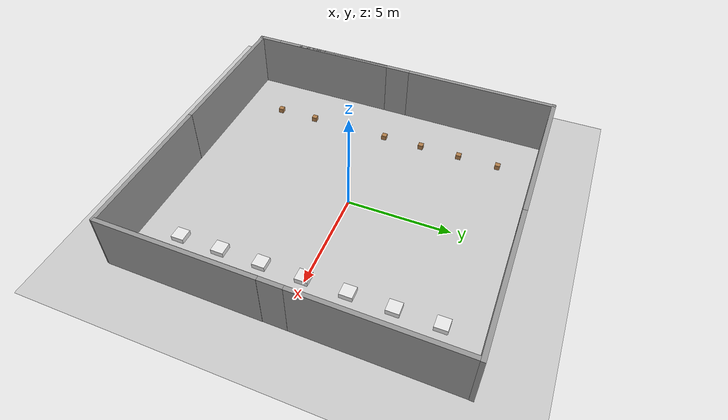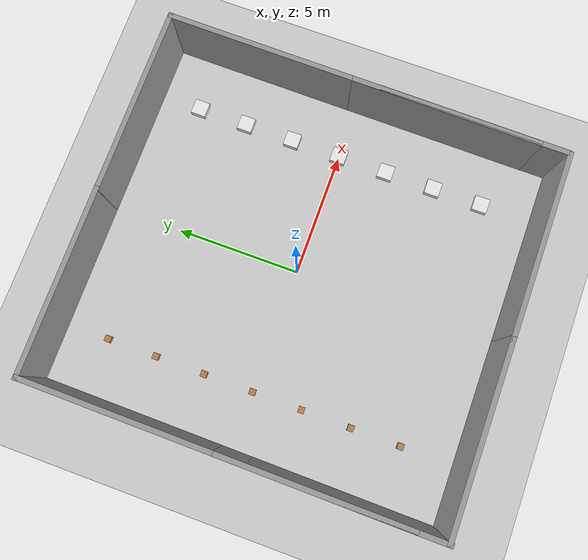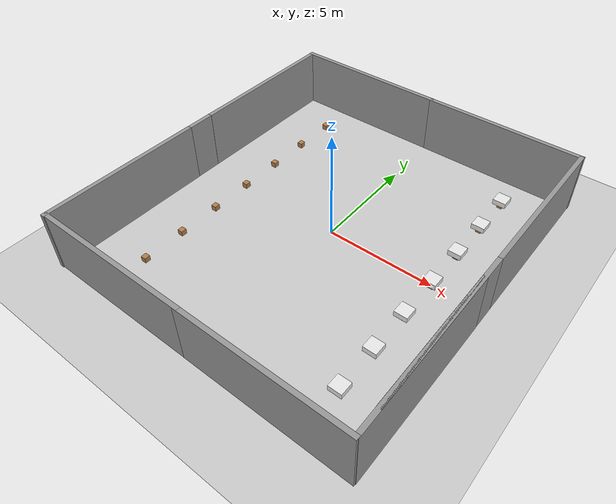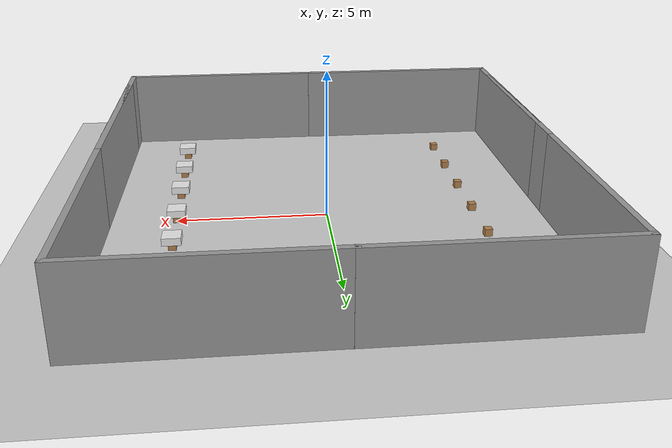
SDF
<sdf version="1.7">
 <world name="default">
  <light name="sun" type="directional">
   <pose>0 0 10 0 -0 0</pose>
   <diffuse>0.8 0.8 0.8 1</diffuse>
   <specular>0.2 0.2 0.2 1</specular>
   <attenuation>
    <range>1000</range>
    <constant>0.9</constant>
    <linear>0.01</linear>
    <quadratic>0.001</quadratic>
   </attenuation>
   <direction>-0.5 0.1 -0.9</direction>
   <spot><inner_angle>0</inner_angle><outer_angle>0</outer_angle><falloff>0</falloff></spot>
  </light>
  <model name="ground_plane">
   <static>1</static>
   <link name="link">
    <collision name="collision">
     <geometry><plane><normal>0 0 1</normal><size>100 100</size></plane></geometry>
     <surface>
      <contact><collide_bitmask>65535</collide_bitmask></contact>
      <friction><ode><mu>100</mu><mu2>50</mu2></ode></friction>
     </surface>
    </collision>
    <visual name="visual">
     <cast_shadows>0</cast_shadows>
     <geometry><plane><normal>0 0 1</normal><size>100 100</size></plane></geometry>
     <material>
      <script><uri>file://media/materials/scripts/gazebo.material</uri><name>Gazebo/Grey</name></script>
     </material>
    </visual>
   </link>
  </model>
  <gravity>0 0 -9.8</gravity>
  <magnetic_field>6e-06 2.3e-05 -4.2e-05</magnetic_field>
  <atmosphere type="adiabatic"/>
  <physics type="ode">
   <max_step_size>0.001</max_step_size>
   <real_time_factor>1</real_time_factor>
   <real_time_update_rate>1000</real_time_update_rate>
  </physics>
  <scene><ambient>0.4 0.4 0.4 1</ambient><background>0.7 0.7 0.7 1</background><shadows>1</shadows></scene>
  <spherical_coordinates>
   <surface_model>EARTH_WGS84</surface_model>
   <latitude_deg>0</latitude_deg>
   <longitude_deg>0</longitude_deg>
   <elevation>0</elevation>
   <heading_deg>0</heading_deg>
  </spherical_coordinates>
  <model name="grey_wall">
   <static>1</static>
   <link name="link">
    <pose>0 0 1.4 0 -0 0</pose>
    <collision name="collision"><geometry><box><size>7.5 0.2 2.8</size></box></geometry></collision>
    <visual name="visual">
     <cast_shadows>0</cast_shadows>
     <geometry><box><size>7.5 0.2 2.8</size></box></geometry>
     <material>
      <script>
       <uri>model://grey_wall/materials/scripts</uri>
       <uri>model://grey_wall/materials/textures</uri>
       <name>vrc/grey_wall</name>
      </script>
     </material>
    </visual>
   </link>
   <pose>-3.75182 -8.20003 0 0 -0 0</pose>
  </model>
  <model name="grey_wall_clone">
   <static>1</static>
   <link name="link">
    <pose>0 0 1.4 0 -0 0</pose>
    <collision name="collision"><geometry><box><size>7.5 0.2 2.8</size></box></geometry></collision>
    <visual name="visual">
     <cast_shadows>0</cast_shadows>
     <geometry><box><size>7.5 0.2 2.8</size></box></geometry>
     <material>
      <script>
       <uri>model://grey_wall/materials/scripts</uri>
       <uri>model://grey_wall/materials/textures</uri>
       <name>vrc/grey_wall</name>
      </script>
     </material>
    </visual>
   </link>
   <pose>-7.40615 -3.3491 0 0 -0 1.56255</pose>
  </model>
  <model name="grey_wall_clone_clone">
   <static>1</static>
   <link name="link">
    <pose>0 0 1.4 0 -0 0</pose>
    <collision name="collision"><geometry><box><size>7.5 0.2 2.8</size></box></geometry></collision>
    <visual name="visual">
     <cast_shadows>0</cast_shadows>
     <geometry><box><size>7.5 0.2 2.8</size></box></geometry>
     <material>
      <script>
       <uri>model://grey_wall/materials/scripts</uri>
       <uri>model://grey_wall/materials/textures</uri>
       <name>vrc/grey_wall</name>
      </script>
     </material>
    </visual>
   </link>
   <pose>-7.34226 4.14259 0 0 -0 1.56255</pose>
  </model>
  <model name="grey_wall_clone_0">
   <static>1</static>
   <link name="link">
    <pose>0 0 1.4 0 -0 0</pose>
    <collision name="collision"><geometry><box><size>7.5 0.2 2.8</size></box></geometry></collision>
    <visual name="visual">
     <cast_shadows>0</cast_shadows>
     <geometry><box><size>7.5 0.2 2.8</size></box></geometry>
     <material>
      <script>
       <uri>model://grey_wall/materials/scripts</uri>
       <uri>model://grey_wall/materials/textures</uri>
       <name>vrc/grey_wall</name>
      </script>
     </material>
    </visual>
   </link>
   <pose>-3.67169 7.8055 0 0 -0 0</pose>
  </model>
  <model name="grey_wall_clone_1">
   <static>1</static>
   <link name="link">
    <pose>0 0 1.4 0 -0 0</pose>
    <collision name="collision"><geometry><box><size>7.5 0.2 2.8</size></box></geometry></collision>
    <visual name="visual">
     <cast_shadows>0</cast_shadows>
     <geometry><box><size>7.5 0.2 2.8</size></box></geometry>
     <material>
      <script>
       <uri>model://grey_wall/materials/scripts</uri>
       <uri>model://grey_wall/materials/textures</uri>
       <name>vrc/grey_wall</name>
      </script>
     </material>
    </visual>
   </link>
   <pose>3.52692 -8.20382 0 0 -0 0</pose>
  </model>
  <model name="grey_wall_clone_2">
   <static>1</static>
   <link name="link">
    <pose>0 0 1.4 0 -0 0</pose>
    <collision name="collision"><geometry><box><size>7.5 0.2 2.8</size></box></geometry></collision>
    <visual name="visual">
     <cast_shadows>0</cast_shadows>
     <geometry><box><size>7.5 0.2 2.8</size></box></geometry>
     <material>
      <script>
       <uri>model://grey_wall/materials/scripts</uri>
       <uri>model://grey_wall/materials/textures</uri>
       <name>vrc/grey_wall</name>
      </script>
     </material>
    </visual>
   </link>
   <pose>3.67865 7.80091 0 0 -0 0</pose>
  </model>
  <model name="grey_wall_clone_clone_clone">
   <static>1</static>
   <link name="link">
    <pose>0 0 1.4 0 -0 0</pose>
    <collision name="collision"><geometry><box><size>7.5 0.2 2.8</size></box></geometry></collision>
    <visual name="visual">
     <cast_shadows>0</cast_shadows>
     <geometry><box><size>7.5 0.2 2.8</size></box></geometry>
     <material>
      <script>
       <uri>model://grey_wall/materials/scripts</uri>
       <uri>model://grey_wall/materials/textures</uri>
       <name>vrc/grey_wall</name>
      </script>
     </material>
    </visual>
   </link>
   <pose>7.28836 4.11789 0 0 -0 1.56255</pose>
  </model>
  <model name="grey_wall_clone_clone_clone_0">
   <static>1</static>
   <link name="link">
    <pose>0 0 1.4 0 -0 0</pose>
    <collision name="collision"><geometry><box><size>7.5 0.2 2.8</size></box></geometry></collision>
    <visual name="visual">
     <cast_shadows>0</cast_shadows>
     <geometry><box><size>7.5 0.2 2.8</size></box></geometry>
     <material>
      <script>
       <uri>model://grey_wall/materials/scripts</uri>
       <uri>model://grey_wall/materials/textures</uri>
       <name>vrc/grey_wall</name>
      </script>
     </material>
    </visual>
   </link>
   <pose>7.22784 -3.36597 0 0 -0 1.56255</pose>
  </model>
  <model name="stand">
   <link name="link_0">
    <inertial>
     <mass>1</mass>
     <inertia>
      <ixx>0.166667</ixx>
      <ixy>0</ixy>
      <ixz>0</ixz>
      <iyy>0.166667</iyy>
      <iyz>0</iyz>
      <izz>0.166667</izz>
     </inertia>
    </inertial>
    <visual name="visual">
     <geometry><box><size>0.25 0.25 0.25</size></box></geometry>
     <material>
      <lighting>1</lighting>
      <script><uri>file://media/materials/scripts/gazebo.material</uri><name>Gazebo/Wood</name></script>
      <shader type="pixel"><normal_map>__default__</normal_map></shader>
      <ambient>0.3 0.3 0.3 1</ambient>
      <diffuse>0.7 0.7 0.7 1</diffuse>
      <specular>0.01 0.01 0.01 1</specular>
      <emissive>0 0 0 1</emissive>
     </material>
    </visual>
    <collision name="collision">
     <geometry><box><size>0.25 0.25 0.25</size></box></geometry>
     <surface>
      <friction>
       <ode><mu>1</mu><mu2>1</mu2><fdir1>0 0 0</fdir1><slip1>0</slip1><slip2>0</slip2></ode>
       <torsional>
        <coefficient>1</coefficient>
        <patch_radius>0</patch_radius>
        <surface_radius>0</surface_radius>
        <use_patch_radius>1</use_patch_radius>
        <ode><slip>0</slip></ode>
       </torsional>
      </friction>
      <bounce><restitution_coefficient>0</restitution_coefficient><threshold>1e+06</threshold></bounce>
      <contact>
       <collide_without_contact>0</collide_without_contact>
       <collide_without_contact_bitmask>1</collide_without_contact_bitmask>
       <collide_bitmask>1</collide_bitmask>
       <ode>
        <soft_cfm>0</soft_cfm>
        <soft_erp>0.2</soft_erp>
        <kp>1e+13</kp>
        <kd>1</kd>
        <max_vel>0.01</max_vel>
        <min_depth>0</min_depth>
       </ode>
       <bullet>
        <split_impulse>1</split_impulse>
        <split_impulse_penetration_threshold>-0.01</split_impulse_penetration_threshold>
        <soft_cfm>0</soft_cfm>
        <soft_erp>0.2</soft_erp>
        <kp>1e+13</kp>
        <kd>1</kd>
       </bullet>
      </contact>
     </surface>
    </collision>
   </link>
   <static>0</static>
   <pose>-5.0 -0.0 0.125 0 -0 0</pose>
  </model>
  <model name="stand_clone">
   <link name="link_0">
    <inertial>
     <mass>1</mass>
     <inertia>
      <ixx>0.166667</ixx>
      <ixy>0</ixy>
      <ixz>0</ixz>
      <iyy>0.166667</iyy>
      <iyz>0</iyz>
      <izz>0.166667</izz>
     </inertia>
    </inertial>
    <visual name="visual">
     <geometry><box><size>0.25 0.25 0.25</size></box></geometry>
     <material>
      <lighting>1</lighting>
      <script><uri>file://media/materials/scripts/gazebo.material</uri><name>Gazebo/Wood</name></script>
      <shader type="pixel"><normal_map>__default__</normal_map></shader>
      <ambient>0.3 0.3 0.3 1</ambient>
      <diffuse>0.7 0.7 0.7 1</diffuse>
      <specular>0.01 0.01 0.01 1</specular>
      <emissive>0 0 0 1</emissive>
     </material>
    </visual>
    <collision name="collision">
     <geometry><box><size>0.25 0.25 0.25</size></box></geometry>
     <surface>
      <friction>
       <ode><mu>1</mu><mu2>1</mu2><fdir1>0 0 0</fdir1><slip1>0</slip1><slip2>0</slip2></ode>
       <torsional>
        <coefficient>1</coefficient>
        <patch_radius>0</patch_radius>
        <surface_radius>0</surface_radius>
        <use_patch_radius>1</use_patch_radius>
        <ode><slip>0</slip></ode>
       </torsional>
      </friction>
      <bounce><restitution_coefficient>0</restitution_coefficient><threshold>1e+06</threshold></bounce>
      <contact>
       <collide_without_contact>0</collide_without_contact>
       <collide_without_contact_bitmask>1</collide_without_contact_bitmask>
       <collide_bitmask>1</collide_bitmask>
       <ode>
        <soft_cfm>0</soft_cfm>
        <soft_erp>0.2</soft_erp>
        <kp>1e+13</kp>
        <kd>1</kd>
        <max_vel>0.01</max_vel>
        <min_depth>0</min_depth>
       </ode>
       <bullet>
        <split_impulse>1</split_impulse>
        <split_impulse_penetration_threshold>-0.01</split_impulse_penetration_threshold>
        <soft_cfm>0</soft_cfm>
        <soft_erp>0.2</soft_erp>
        <kp>1e+13</kp>
        <kd>1</kd>
       </bullet>
      </contact>
     </surface>
    </collision>
   </link>
   <static>0</static>
   <pose>-5.0 -2.0 0.125 0 -0 0</pose>
  </model>
  <model name="stand_clone_0">
   <link name="link_0">
    <inertial>
     <mass>1</mass>
     <inertia>
      <ixx>0.166667</ixx>
      <ixy>0</ixy>
      <ixz>0</ixz>
      <iyy>0.166667</iyy>
      <iyz>0</iyz>
      <izz>0.166667</izz>
     </inertia>
    </inertial>
    <visual name="visual">
     <geometry><box><size>0.25 0.25 0.25</size></box></geometry>
     <material>
      <lighting>1</lighting>
      <script><uri>file://media/materials/scripts/gazebo.material</uri><name>Gazebo/Wood</name></script>
      <shader type="pixel"><normal_map>__default__</normal_map></shader>
      <ambient>0.3 0.3 0.3 1</ambient>
      <diffuse>0.7 0.7 0.7 1</diffuse>
      <specular>0.01 0.01 0.01 1</specular>
      <emissive>0 0 0 1</emissive>
     </material>
    </visual>
    <collision name="collision">
     <geometry><box><size>0.25 0.25 0.25</size></box></geometry>
     <surface>
      <friction>
       <ode><mu>1</mu><mu2>1</mu2><fdir1>0 0 0</fdir1><slip1>0</slip1><slip2>0</slip2></ode>
       <torsional>
        <coefficient>1</coefficient>
        <patch_radius>0</patch_radius>
        <surface_radius>0</surface_radius>
        <use_patch_radius>1</use_patch_radius>
        <ode><slip>0</slip></ode>
       </torsional>
      </friction>
      <bounce><restitution_coefficient>0</restitution_coefficient><threshold>1e+06</threshold></bounce>
      <contact>
       <collide_without_contact>0</collide_without_contact>
       <collide_without_contact_bitmask>1</collide_without_contact_bitmask>
       <collide_bitmask>1</collide_bitmask>
       <ode>
        <soft_cfm>0</soft_cfm>
        <soft_erp>0.2</soft_erp>
        <kp>1e+13</kp>
        <kd>1</kd>
        <max_vel>0.01</max_vel>
        <min_depth>0</min_depth>
       </ode>
       <bullet>
        <split_impulse>1</split_impulse>
        <split_impulse_penetration_threshold>-0.01</split_impulse_penetration_threshold>
        <soft_cfm>0</soft_cfm>
        <soft_erp>0.2</soft_erp>
        <kp>1e+13</kp>
        <kd>1</kd>
       </bullet>
      </contact>
     </surface>
    </collision>
   </link>
   <static>0</static>
   <pose>-5.0 -4.0 0.125 0 -0 0</pose>
  </model>
  <model name="stand_clone_1">
   <link name="link_0">
    <inertial>
     <mass>1</mass>
     <inertia>
      <ixx>0.166667</ixx>
      <ixy>0</ixy>
      <ixz>0</ixz>
      <iyy>0.166667</iyy>
      <iyz>0</iyz>
      <izz>0.166667</izz>
     </inertia>
    </inertial>
    <visual name="visual">
     <geometry><box><size>0.25 0.25 0.25</size></box></geometry>
     <material>
      <lighting>1</lighting>
      <script><uri>file://media/materials/scripts/gazebo.material</uri><name>Gazebo/Wood</name></script>
      <shader type="pixel"><normal_map>__default__</normal_map></shader>
      <ambient>0.3 0.3 0.3 1</ambient>
      <diffuse>0.7 0.7 0.7 1</diffuse>
      <specular>0.01 0.01 0.01 1</specular>
      <emissive>0 0 0 1</emissive>
     </material>
    </visual>
    <collision name="collision">
     <geometry><box><size>0.25 0.25 0.25</size></box></geometry>
     <surface>
      <friction>
       <ode><mu>1</mu><mu2>1</mu2><fdir1>0 0 0</fdir1><slip1>0</slip1><slip2>0</slip2></ode>
       <torsional>
        <coefficient>1</coefficient>
        <patch_radius>0</patch_radius>
        <surface_radius>0</surface_radius>
        <use_patch_radius>1</use_patch_radius>
        <ode><slip>0</slip></ode>
       </torsional>
      </friction>
      <bounce><restitution_coefficient>0</restitution_coefficient><threshold>1e+06</threshold></bounce>
      <contact>
       <collide_without_contact>0</collide_without_contact>
       <collide_without_contact_bitmask>1</collide_without_contact_bitmask>
       <collide_bitmask>1</collide_bitmask>
       <ode>
        <soft_cfm>0</soft_cfm>
        <soft_erp>0.2</soft_erp>
        <kp>1e+13</kp>
        <kd>1</kd>
        <max_vel>0.01</max_vel>
        <min_depth>0</min_depth>
       </ode>
       <bullet>
        <split_impulse>1</split_impulse>
        <split_impulse_penetration_threshold>-0.01</split_impulse_penetration_threshold>
        <soft_cfm>0</soft_cfm>
        <soft_erp>0.2</soft_erp>
        <kp>1e+13</kp>
        <kd>1</kd>
       </bullet>
      </contact>
     </surface>
    </collision>
   </link>
   <static>0</static>
   <pose>-5.0 -6.0 0.125 0 -0 0</pose>
  </model>
  <model name="stand_clone_2">
   <link name="link_0">
    <inertial>
     <mass>1</mass>
     <inertia>
      <ixx>0.166667</ixx>
      <ixy>0</ixy>
      <ixz>0</ixz>
      <iyy>0.166667</iyy>
      <iyz>0</iyz>
      <izz>0.166667</izz>
     </inertia>
    </inertial>
    <visual name="visual">
     <geometry><box><size>0.25 0.25 0.25</size></box></geometry>
     <material>
      <lighting>1</lighting>
      <script><uri>file://media/materials/scripts/gazebo.material</uri><name>Gazebo/Wood</name></script>
      <shader type="pixel"><normal_map>__default__</normal_map></shader>
      <ambient>0.3 0.3 0.3 1</ambient>
      <diffuse>0.7 0.7 0.7 1</diffuse>
      <specular>0.01 0.01 0.01 1</specular>
      <emissive>0 0 0 1</emissive>
     </material>
    </visual>
    <collision name="collision">
     <geometry><box><size>0.25 0.25 0.25</size></box></geometry>
     <surface>
      <friction>
       <ode><mu>1</mu><mu2>1</mu2><fdir1>0 0 0</fdir1><slip1>0</slip1><slip2>0</slip2></ode>
       <torsional>
        <coefficient>1</coefficient>
        <patch_radius>0</patch_radius>
        <surface_radius>0</surface_radius>
        <use_patch_radius>1</use_patch_radius>
        <ode><slip>0</slip></ode>
       </torsional>
      </friction>
      <bounce><restitution_coefficient>0</restitution_coefficient><threshold>1e+06</threshold></bounce>
      <contact>
       <collide_without_contact>0</collide_without_contact>
       <collide_without_contact_bitmask>1</collide_without_contact_bitmask>
       <collide_bitmask>1</collide_bitmask>
       <ode>
        <soft_cfm>0</soft_cfm>
        <soft_erp>0.2</soft_erp>
        <kp>1e+13</kp>
        <kd>1</kd>
        <max_vel>0.01</max_vel>
        <min_depth>0</min_depth>
       </ode>
       <bullet>
        <split_impulse>1</split_impulse>
        <split_impulse_penetration_threshold>-0.01</split_impulse_penetration_threshold>
        <soft_cfm>0</soft_cfm>
        <soft_erp>0.2</soft_erp>
        <kp>1e+13</kp>
        <kd>1</kd>
       </bullet>
      </contact>
     </surface>
    </collision>
   </link>
   <static>0</static>
   <pose>-5.0 2.0 0.125 0 -0 0</pose>
  </model>
  <model name="stand_clone_3">
   <link name="link_0">
    <inertial>
     <mass>1</mass>
     <inertia>
      <ixx>0.166667</ixx>
      <ixy>0</ixy>
      <ixz>0</ixz>
      <iyy>0.166667</iyy>
      <iyz>0</iyz>
      <izz>0.166667</izz>
     </inertia>
    </inertial>
    <visual name="visual">
     <geometry><box><size>0.25 0.25 0.25</size></box></geometry>
     <material>
      <lighting>1</lighting>
      <script><uri>file://media/materials/scripts/gazebo.material</uri><name>Gazebo/Wood</name></script>
      <shader type="pixel"><normal_map>__default__</normal_map></shader>
      <ambient>0.3 0.3 0.3 1</ambient>
      <diffuse>0.7 0.7 0.7 1</diffuse>
      <specular>0.01 0.01 0.01 1</specular>
      <emissive>0 0 0 1</emissive>
     </material>
    </visual>
    <collision name="collision">
     <geometry><box><size>0.25 0.25 0.25</size></box></geometry>
     <surface>
      <friction>
       <ode><mu>1</mu><mu2>1</mu2><fdir1>0 0 0</fdir1><slip1>0</slip1><slip2>0</slip2></ode>
       <torsional>
        <coefficient>1</coefficient>
        <patch_radius>0</patch_radius>
        <surface_radius>0</surface_radius>
        <use_patch_radius>1</use_patch_radius>
        <ode><slip>0</slip></ode>
       </torsional>
      </friction>
      <bounce><restitution_coefficient>0</restitution_coefficient><threshold>1e+06</threshold></bounce>
      <contact>
       <collide_without_contact>0</collide_without_contact>
       <collide_without_contact_bitmask>1</collide_without_contact_bitmask>
       <collide_bitmask>1</collide_bitmask>
       <ode>
        <soft_cfm>0</soft_cfm>
        <soft_erp>0.2</soft_erp>
        <kp>1e+13</kp>
        <kd>1</kd>
        <max_vel>0.01</max_vel>
        <min_depth>0</min_depth>
       </ode>
       <bullet>
        <split_impulse>1</split_impulse>
        <split_impulse_penetration_threshold>-0.01</split_impulse_penetration_threshold>
        <soft_cfm>0</soft_cfm>
        <soft_erp>0.2</soft_erp>
        <kp>1e+13</kp>
        <kd>1</kd>
       </bullet>
      </contact>
     </surface>
    </collision>
   </link>
   <static>0</static>
   <pose>-5.0 4.0 0.125 0 -0 0</pose>
  </model>
  <model name="stand_clone_4">
   <link name="link_0">
    <inertial>
     <mass>1</mass>
     <inertia>
      <ixx>0.166667</ixx>
      <ixy>0</ixy>
      <ixz>0</ixz>
      <iyy>0.166667</iyy>
      <iyz>0</iyz>
      <izz>0.166667</izz>
     </inertia>
    </inertial>
    <visual name="visual">
     <geometry><box><size>0.25 0.25 0.25</size></box></geometry>
     <material>
      <lighting>1</lighting>
      <script><uri>file://media/materials/scripts/gazebo.material</uri><name>Gazebo/Wood</name></script>
      <shader type="pixel"><normal_map>__default__</normal_map></shader>
      <ambient>0.3 0.3 0.3 1</ambient>
      <diffuse>0.7 0.7 0.7 1</diffuse>
      <specular>0.01 0.01 0.01 1</specular>
      <emissive>0 0 0 1</emissive>
     </material>
    </visual>
    <collision name="collision">
     <geometry><box><size>0.25 0.25 0.25</size></box></geometry>
     <surface>
      <friction>
       <ode><mu>1</mu><mu2>1</mu2><fdir1>0 0 0</fdir1><slip1>0</slip1><slip2>0</slip2></ode>
       <torsional>
        <coefficient>1</coefficient>
        <patch_radius>0</patch_radius>
        <surface_radius>0</surface_radius>
        <use_patch_radius>1</use_patch_radius>
        <ode><slip>0</slip></ode>
       </torsional>
      </friction>
      <bounce><restitution_coefficient>0</restitution_coefficient><threshold>1e+06</threshold></bounce>
      <contact>
       <collide_without_contact>0</collide_without_contact>
       <collide_without_contact_bitmask>1</collide_without_contact_bitmask>
       <collide_bitmask>1</collide_bitmask>
       <ode>
        <soft_cfm>0</soft_cfm>
        <soft_erp>0.2</soft_erp>
        <kp>1e+13</kp>
        <kd>1</kd>
        <max_vel>0.01</max_vel>
        <min_depth>0</min_depth>
       </ode>
       <bullet>
        <split_impulse>1</split_impulse>
        <split_impulse_penetration_threshold>-0.01</split_impulse_penetration_threshold>
        <soft_cfm>0</soft_cfm>
        <soft_erp>0.2</soft_erp>
        <kp>1e+13</kp>
        <kd>1</kd>
       </bullet>
      </contact>
     </surface>
    </collision>
   </link>
   <static>0</static>
   <pose>-5.0 6.0 0.125 -4e-06 -1e-06 -0.001712</pose>
  </model>
  <model name="stand_clone_5">
   <link name="link_0">
    <inertial>
     <mass>1</mass>
     <inertia>
      <ixx>0.166667</ixx>
      <ixy>0</ixy>
      <ixz>0</ixz>
      <iyy>0.166667</iyy>
      <iyz>0</iyz>
      <izz>0.166667</izz>
     </inertia>
    </inertial>
    <visual name="visual">
     <geometry><box><size>0.25 0.25 0.25</size></box></geometry>
     <material>
      <lighting>1</lighting>
      <script><uri>file://media/materials/scripts/gazebo.material</uri><name>Gazebo/Wood</name></script>
      <shader type="pixel"><normal_map>__default__</normal_map></shader>
      <ambient>0.3 0.3 0.3 1</ambient>
      <diffuse>0.7 0.7 0.7 1</diffuse>
      <specular>0.01 0.01 0.01 1</specular>
      <emissive>0 0 0 1</emissive>
     </material>
    </visual>
    <collision name="collision">
     <geometry><box><size>0.25 0.25 0.25</size></box></geometry>
     <surface>
      <friction>
       <ode><mu>1</mu><mu2>1</mu2><fdir1>0 0 0</fdir1><slip1>0</slip1><slip2>0</slip2></ode>
       <torsional>
        <coefficient>1</coefficient>
        <patch_radius>0</patch_radius>
        <surface_radius>0</surface_radius>
        <use_patch_radius>1</use_patch_radius>
        <ode><slip>0</slip></ode>
       </torsional>
      </friction>
      <bounce><restitution_coefficient>0</restitution_coefficient><threshold>1e+06</threshold></bounce>
      <contact>
       <collide_without_contact>0</collide_without_contact>
       <collide_without_contact_bitmask>1</collide_without_contact_bitmask>
       <collide_bitmask>1</collide_bitmask>
       <ode>
        <soft_cfm>0</soft_cfm>
        <soft_erp>0.2</soft_erp>
        <kp>1e+13</kp>
        <kd>1</kd>
        <max_vel>0.01</max_vel>
        <min_depth>0</min_depth>
       </ode>
       <bullet>
        <split_impulse>1</split_impulse>
        <split_impulse_penetration_threshold>-0.01</split_impulse_penetration_threshold>
        <soft_cfm>0</soft_cfm>
        <soft_erp>0.2</soft_erp>
        <kp>1e+13</kp>
        <kd>1</kd>
       </bullet>
      </contact>
     </surface>
    </collision>
   </link>
   <static>0</static>
   <pose>5.0 -0.0 0.125 0 -0 0</pose>
  </model>
  <model name="stand_clone_6">
   <link name="link_0">
    <inertial>
     <mass>1</mass>
     <inertia>
      <ixx>0.166667</ixx>
      <ixy>0</ixy>
      <ixz>0</ixz>
      <iyy>0.166667</iyy>
      <iyz>0</iyz>
      <izz>0.166667</izz>
     </inertia>
    </inertial>
    <visual name="visual">
     <geometry><box><size>0.25 0.25 0.25</size></box></geometry>
     <material>
      <lighting>1</lighting>
      <script><uri>file://media/materials/scripts/gazebo.material</uri><name>Gazebo/Wood</name></script>
      <shader type="pixel"><normal_map>__default__</normal_map></shader>
      <ambient>0.3 0.3 0.3 1</ambient>
      <diffuse>0.7 0.7 0.7 1</diffuse>
      <specular>0.01 0.01 0.01 1</specular>
      <emissive>0 0 0 1</emissive>
     </material>
    </visual>
    <collision name="collision">
     <geometry><box><size>0.25 0.25 0.25</size></box></geometry>
     <surface>
      <friction>
       <ode><mu>1</mu><mu2>1</mu2><fdir1>0 0 0</fdir1><slip1>0</slip1><slip2>0</slip2></ode>
       <torsional>
        <coefficient>1</coefficient>
        <patch_radius>0</patch_radius>
        <surface_radius>0</surface_radius>
        <use_patch_radius>1</use_patch_radius>
        <ode><slip>0</slip></ode>
       </torsional>
      </friction>
      <bounce><restitution_coefficient>0</restitution_coefficient><threshold>1e+06</threshold></bounce>
      <contact>
       <collide_without_contact>0</collide_without_contact>
       <collide_without_contact_bitmask>1</collide_without_contact_bitmask>
       <collide_bitmask>1</collide_bitmask>
       <ode>
        <soft_cfm>0</soft_cfm>
        <soft_erp>0.2</soft_erp>
        <kp>1e+13</kp>
        <kd>1</kd>
        <max_vel>0.01</max_vel>
        <min_depth>0</min_depth>
       </ode>
       <bullet>
        <split_impulse>1</split_impulse>
        <split_impulse_penetration_threshold>-0.01</split_impulse_penetration_threshold>
        <soft_cfm>0</soft_cfm>
        <soft_erp>0.2</soft_erp>
        <kp>1e+13</kp>
        <kd>1</kd>
       </bullet>
      </contact>
     </surface>
    </collision>
   </link>
   <static>0</static>
   <pose>5.0 2.0 0.125 0 -0 0</pose>
  </model>
  <model name="stand_clone_7">
   <link name="link_0">
    <inertial>
     <mass>1</mass>
     <inertia>
      <ixx>0.166667</ixx>
      <ixy>0</ixy>
      <ixz>0</ixz>
      <iyy>0.166667</iyy>
      <iyz>0</iyz>
      <izz>0.166667</izz>
     </inertia>
    </inertial>
    <visual name="visual">
     <geometry><box><size>0.25 0.25 0.25</size></box></geometry>
     <material>
      <lighting>1</lighting>
      <script><uri>file://media/materials/scripts/gazebo.material</uri><name>Gazebo/Wood</name></script>
      <shader type="pixel"><normal_map>__default__</normal_map></shader>
      <ambient>0.3 0.3 0.3 1</ambient>
      <diffuse>0.7 0.7 0.7 1</diffuse>
      <specular>0.01 0.01 0.01 1</specular>
      <emissive>0 0 0 1</emissive>
     </material>
    </visual>
    <collision name="collision">
     <geometry><box><size>0.25 0.25 0.25</size></box></geometry>
     <surface>
      <friction>
       <ode><mu>1</mu><mu2>1</mu2><fdir1>0 0 0</fdir1><slip1>0</slip1><slip2>0</slip2></ode>
       <torsional>
        <coefficient>1</coefficient>
        <patch_radius>0</patch_radius>
        <surface_radius>0</surface_radius>
        <use_patch_radius>1</use_patch_radius>
        <ode><slip>0</slip></ode>
       </torsional>
      </friction>
      <bounce><restitution_coefficient>0</restitution_coefficient><threshold>1e+06</threshold></bounce>
      <contact>
       <collide_without_contact>0</collide_without_contact>
       <collide_without_contact_bitmask>1</collide_without_contact_bitmask>
       <collide_bitmask>1</collide_bitmask>
       <ode>
        <soft_cfm>0</soft_cfm>
        <soft_erp>0.2</soft_erp>
        <kp>1e+13</kp>
        <kd>1</kd>
        <max_vel>0.01</max_vel>
        <min_depth>0</min_depth>
       </ode>
       <bullet>
        <split_impulse>1</split_impulse>
        <split_impulse_penetration_threshold>-0.01</split_impulse_penetration_threshold>
        <soft_cfm>0</soft_cfm>
        <soft_erp>0.2</soft_erp>
        <kp>1e+13</kp>
        <kd>1</kd>
       </bullet>
      </contact>
     </surface>
    </collision>
   </link>
   <static>0</static>
   <pose>5.0 4.0 0.125 0 -0 0</pose>
  </model>
  <model name="stand_clone_8">
   <link name="link_0">
    <inertial>
     <mass>1</mass>
     <inertia>
      <ixx>0.166667</ixx>
      <ixy>0</ixy>
      <ixz>0</ixz>
      <iyy>0.166667</iyy>
      <iyz>0</iyz>
      <izz>0.166667</izz>
     </inertia>
    </inertial>
    <visual name="visual">
     <geometry><box><size>0.25 0.25 0.25</size></box></geometry>
     <material>
      <lighting>1</lighting>
      <script><uri>file://media/materials/scripts/gazebo.material</uri><name>Gazebo/Wood</name></script>
      <shader type="pixel"><normal_map>__default__</normal_map></shader>
      <ambient>0.3 0.3 0.3 1</ambient>
      <diffuse>0.7 0.7 0.7 1</diffuse>
      <specular>0.01 0.01 0.01 1</specular>
      <emissive>0 0 0 1</emissive>
     </material>
    </visual>
    <collision name="collision">
     <geometry><box><size>0.25 0.25 0.25</size></box></geometry>
     <surface>
      <friction>
       <ode><mu>1</mu><mu2>1</mu2><fdir1>0 0 0</fdir1><slip1>0</slip1><slip2>0</slip2></ode>
       <torsional>
        <coefficient>1</coefficient>
        <patch_radius>0</patch_radius>
        <surface_radius>0</surface_radius>
        <use_patch_radius>1</use_patch_radius>
        <ode><slip>0</slip></ode>
       </torsional>
      </friction>
      <bounce><restitution_coefficient>0</restitution_coefficient><threshold>1e+06</threshold></bounce>
      <contact>
       <collide_without_contact>0</collide_without_contact>
       <collide_without_contact_bitmask>1</collide_without_contact_bitmask>
       <collide_bitmask>1</collide_bitmask>
       <ode>
        <soft_cfm>0</soft_cfm>
        <soft_erp>0.2</soft_erp>
        <kp>1e+13</kp>
        <kd>1</kd>
        <max_vel>0.01</max_vel>
        <min_depth>0</min_depth>
       </ode>
       <bullet>
        <split_impulse>1</split_impulse>
        <split_impulse_penetration_threshold>-0.01</split_impulse_penetration_threshold>
        <soft_cfm>0</soft_cfm>
        <soft_erp>0.2</soft_erp>
        <kp>1e+13</kp>
        <kd>1</kd>
       </bullet>
      </contact>
     </surface>
    </collision>
   </link>
   <static>0</static>
   <pose>5.0 6.0 0.125 0 -0 0</pose>
  </model>
  <model name="stand_clone_9">
   <link name="link_0">
    <inertial>
     <mass>1</mass>
     <inertia>
      <ixx>0.166667</ixx>
      <ixy>0</ixy>
      <ixz>0</ixz>
      <iyy>0.166667</iyy>
      <iyz>0</iyz>
      <izz>0.166667</izz>
     </inertia>
    </inertial>
    <visual name="visual">
     <geometry><box><size>0.25 0.25 0.25</size></box></geometry>
     <material>
      <lighting>1</lighting>
      <script><uri>file://media/materials/scripts/gazebo.material</uri><name>Gazebo/Wood</name></script>
      <shader type="pixel"><normal_map>__default__</normal_map></shader>
      <ambient>0.3 0.3 0.3 1</ambient>
      <diffuse>0.7 0.7 0.7 1</diffuse>
      <specular>0.01 0.01 0.01 1</specular>
      <emissive>0 0 0 1</emissive>
     </material>
    </visual>
    <collision name="collision">
     <geometry><box><size>0.25 0.25 0.25</size></box></geometry>
     <surface>
      <friction>
       <ode><mu>1</mu><mu2>1</mu2><fdir1>0 0 0</fdir1><slip1>0</slip1><slip2>0</slip2></ode>
       <torsional>
        <coefficient>1</coefficient>
        <patch_radius>0</patch_radius>
        <surface_radius>0</surface_radius>
        <use_patch_radius>1</use_patch_radius>
        <ode><slip>0</slip></ode>
       </torsional>
      </friction>
      <bounce><restitution_coefficient>0</restitution_coefficient><threshold>1e+06</threshold></bounce>
      <contact>
       <collide_without_contact>0</collide_without_contact>
       <collide_without_contact_bitmask>1</collide_without_contact_bitmask>
       <collide_bitmask>1</collide_bitmask>
       <ode>
        <soft_cfm>0</soft_cfm>
        <soft_erp>0.2</soft_erp>
        <kp>1e+13</kp>
        <kd>1</kd>
        <max_vel>0.01</max_vel>
        <min_depth>0</min_depth>
       </ode>
       <bullet>
        <split_impulse>1</split_impulse>
        <split_impulse_penetration_threshold>-0.01</split_impulse_penetration_threshold>
        <soft_cfm>0</soft_cfm>
        <soft_erp>0.2</soft_erp>
        <kp>1e+13</kp>
        <kd>1</kd>
       </bullet>
      </contact>
     </surface>
    </collision>
   </link>
   <static>0</static>
   <pose>5.0 -2.0 0.125 0 -0 0</pose>
  </model>
  <model name="stand_clone_10">
   <link name="link_0">
    <inertial>
     <mass>1</mass>
     <inertia>
      <ixx>0.166667</ixx>
      <ixy>0</ixy>
      <ixz>0</ixz>
      <iyy>0.166667</iyy>
      <iyz>0</iyz>
      <izz>0.166667</izz>
     </inertia>
    </inertial>
    <visual name="visual">
     <geometry><box><size>0.25 0.25 0.25</size></box></geometry>
     <material>
      <lighting>1</lighting>
      <script><uri>file://media/materials/scripts/gazebo.material</uri><name>Gazebo/Wood</name></script>
      <shader type="pixel"><normal_map>__default__</normal_map></shader>
      <ambient>0.3 0.3 0.3 1</ambient>
      <diffuse>0.7 0.7 0.7 1</diffuse>
      <specular>0.01 0.01 0.01 1</specular>
      <emissive>0 0 0 1</emissive>
     </material>
    </visual>
    <collision name="collision">
     <geometry><box><size>0.25 0.25 0.25</size></box></geometry>
     <surface>
      <friction>
       <ode><mu>1</mu><mu2>1</mu2><fdir1>0 0 0</fdir1><slip1>0</slip1><slip2>0</slip2></ode>
       <torsional>
        <coefficient>1</coefficient>
        <patch_radius>0</patch_radius>
        <surface_radius>0</surface_radius>
        <use_patch_radius>1</use_patch_radius>
        <ode><slip>0</slip></ode>
       </torsional>
      </friction>
      <bounce><restitution_coefficient>0</restitution_coefficient><threshold>1e+06</threshold></bounce>
      <contact>
       <collide_without_contact>0</collide_without_contact>
       <collide_without_contact_bitmask>1</collide_without_contact_bitmask>
       <collide_bitmask>1</collide_bitmask>
       <ode>
        <soft_cfm>0</soft_cfm>
        <soft_erp>0.2</soft_erp>
        <kp>1e+13</kp>
        <kd>1</kd>
        <max_vel>0.01</max_vel>
        <min_depth>0</min_depth>
       </ode>
       <bullet>
        <split_impulse>1</split_impulse>
        <split_impulse_penetration_threshold>-0.01</split_impulse_penetration_threshold>
        <soft_cfm>0</soft_cfm>
        <soft_erp>0.2</soft_erp>
        <kp>1e+13</kp>
        <kd>1</kd>
       </bullet>
      </contact>
     </surface>
    </collision>
   </link>
   <static>0</static>
   <pose>5.0 -4.0 0.125 0 -0 0</pose>
  </model>
  <model name="stand_clone_11">
   <link name="link_0">
    <inertial>
     <mass>1</mass>
     <inertia>
      <ixx>0.166667</ixx>
      <ixy>0</ixy>
      <ixz>0</ixz>
      <iyy>0.166667</iyy>
      <iyz>0</iyz>
      <izz>0.166667</izz>
     </inertia>
    </inertial>
    <visual name="visual">
     <geometry><box><size>0.25 0.25 0.25</size></box></geometry>
     <material>
      <lighting>1</lighting>
      <script><uri>file://media/materials/scripts/gazebo.material</uri><name>Gazebo/Wood</name></script>
      <shader type="pixel"><normal_map>__default__</normal_map></shader>
      <ambient>0.3 0.3 0.3 1</ambient>
      <diffuse>0.7 0.7 0.7 1</diffuse>
      <specular>0.01 0.01 0.01 1</specular>
      <emissive>0 0 0 1</emissive>
     </material>
    </visual>
    <collision name="collision">
     <geometry><box><size>0.25 0.25 0.25</size></box></geometry>
     <surface>
      <friction>
       <ode><mu>1</mu><mu2>1</mu2><fdir1>0 0 0</fdir1><slip1>0</slip1><slip2>0</slip2></ode>
       <torsional>
        <coefficient>1</coefficient>
        <patch_radius>0</patch_radius>
        <surface_radius>0</surface_radius>
        <use_patch_radius>1</use_patch_radius>
        <ode><slip>0</slip></ode>
       </torsional>
      </friction>
      <bounce><restitution_coefficient>0</restitution_coefficient><threshold>1e+06</threshold></bounce>
      <contact>
       <collide_without_contact>0</collide_without_contact>
       <collide_without_contact_bitmask>1</collide_without_contact_bitmask>
       <collide_bitmask>1</collide_bitmask>
       <ode>
        <soft_cfm>0</soft_cfm>
        <soft_erp>0.2</soft_erp>
        <kp>1e+13</kp>
        <kd>1</kd>
        <max_vel>0.01</max_vel>
        <min_depth>0</min_depth>
       </ode>
       <bullet>
        <split_impulse>1</split_impulse>
        <split_impulse_penetration_threshold>-0.01</split_impulse_penetration_threshold>
        <soft_cfm>0</soft_cfm>
        <soft_erp>0.2</soft_erp>
        <kp>1e+13</kp>
        <kd>1</kd>
       </bullet>
      </contact>
     </surface>
    </collision>
   </link>
   <static>0</static>
   <pose>5.0 -6.0 0.125 0 -0 0</pose>
  </model>
  <model name="grey_wall_clone_clone_0">
   <static>1</static>
   <link name="link">
    <pose>0 0 1.4 0 -0 0</pose>
    <collision name="collision"><geometry><box><size>7.5 0.2 2.8</size></box></geometry></collision>
    <visual name="visual">
     <cast_shadows>0</cast_shadows>
     <geometry><box><size>7.5 0.2 2.8</size></box></geometry>
     <material>
      <script>
       <uri>model://grey_wall/materials/scripts</uri>
       <uri>model://grey_wall/materials/textures</uri>
       <name>vrc/grey_wall</name>
      </script>
     </material>
    </visual>
   </link>
   <pose>-7.41431 -4.58383 0 0 -0 1.56255</pose>
  </model>
  <model name="grey_wall_clone_clone_1">
   <static>1</static>
   <link name="link">
    <pose>0 0 1.4 0 -0 0</pose>
    <collision name="collision"><geometry><box><size>7.5 0.2 2.8</size></box></geometry></collision>
    <visual name="visual">
     <cast_shadows>0</cast_shadows>
     <geometry><box><size>7.5 0.2 2.8</size></box></geometry>
     <material>
      <script>
       <uri>model://grey_wall/materials/scripts</uri>
       <uri>model://grey_wall/materials/textures</uri>
       <name>vrc/grey_wall</name>
      </script>
     </material>
    </visual>
   </link>
   <pose>7.22571 -4.47487 0 0 -0 1.56255</pose>
  </model>
  <model name="payload_1">
   <link name="link">
    <inertial>
     <mass>1</mass>
     <inertia>
      <ixx>0.166667</ixx>
      <ixy>0</ixy>
      <ixz>0</ixz>
      <iyy>0.166667</iyy>
      <iyz>0</iyz>
      <izz>0.166667</izz>
     </inertia>
    </inertial>
    <visual name="visual">
     <geometry><box><size>0.6 0.6 0.25</size></box></geometry>
     <material>
      <script><name>Gazebo/White</name><uri>file://media/materials/scripts/gazebo.material</uri></script>
      <shader type="pixel"><normal_map>__default__</normal_map></shader>
      <ambient>0.3 0.3 0.3 1</ambient>
      <diffuse>0.7 0.7 0.7 1</diffuse>
      <specular>0.01 0.01 0.01 1</specular>
      <emissive>0 0 0 1</emissive>
     </material>
    </visual>
    <collision name="collision">
     <geometry><box><size>0.6 0.6 0.25</size></box></geometry>
     <surface>
      <friction>
       <ode><mu>1</mu><mu2>1</mu2><fdir1>0 0 0</fdir1><slip1>0</slip1><slip2>0</slip2></ode>
       <torsional>
        <coefficient>1</coefficient>
        <patch_radius>0</patch_radius>
        <surface_radius>0</surface_radius>
        <use_patch_radius>1</use_patch_radius>
        <ode><slip>0</slip></ode>
       </torsional>
      </friction>
      <bounce><restitution_coefficient>0</restitution_coefficient><threshold>1e+06</threshold></bounce>
      <contact>
       <collide_without_contact>0</collide_without_contact>
       <collide_without_contact_bitmask>1</collide_without_contact_bitmask>
       <collide_bitmask>1</collide_bitmask>
       <ode>
        <soft_cfm>0</soft_cfm>
        <soft_erp>0.2</soft_erp>
        <kp>1e+13</kp>
        <kd>1</kd>
        <max_vel>0.01</max_vel>
        <min_depth>0</min_depth>
       </ode>
       <bullet>
        <split_impulse>1</split_impulse>
        <split_impulse_penetration_threshold>-0.01</split_impulse_penetration_threshold>
        <soft_cfm>0</soft_cfm>
        <soft_erp>0.2</soft_erp>
        <kp>1e+13</kp>
        <kd>1</kd>
       </bullet>
      </contact>
     </surface>
    </collision>
   </link>
   <static>0</static>
   <pose>5.0 6.0 0.375 -7e-06 1.8e-05 -0.000281</pose>
  </model>
  <model name="payload_2">
   <link name="link">
    <inertial>
     <mass>1</mass>
     <inertia>
      <ixx>0.166667</ixx>
      <ixy>0</ixy>
      <ixz>0</ixz>
      <iyy>0.166667</iyy>
      <iyz>0</iyz>
      <izz>0.166667</izz>
     </inertia>
    </inertial>
    <visual name="visual">
     <geometry><box><size>0.6 0.6 0.25</size></box></geometry>
     <material>
      <script><name>Gazebo/White</name><uri>file://media/materials/scripts/gazebo.material</uri></script>
      <shader type="pixel"><normal_map>__default__</normal_map></shader>
      <ambient>0.3 0.3 0.3 1</ambient>
      <diffuse>0.7 0.7 0.7 1</diffuse>
      <specular>0.01 0.01 0.01 1</specular>
      <emissive>0 0 0 1</emissive>
     </material>
    </visual>
    <collision name="collision">
     <geometry><box><size>0.6 0.6 0.25</size></box></geometry>
     <surface>
      <friction>
       <ode><mu>1</mu><mu2>1</mu2><fdir1>0 0 0</fdir1><slip1>0</slip1><slip2>0</slip2></ode>
       <torsional>
        <coefficient>1</coefficient>
        <patch_radius>0</patch_radius>
        <surface_radius>0</surface_radius>
        <use_patch_radius>1</use_patch_radius>
        <ode><slip>0</slip></ode>
       </torsional>
      </friction>
      <bounce><restitution_coefficient>0</restitution_coefficient><threshold>1e+06</threshold></bounce>
      <contact>
       <collide_without_contact>0</collide_without_contact>
       <collide_without_contact_bitmask>1</collide_without_contact_bitmask>
       <collide_bitmask>1</collide_bitmask>
       <ode>
        <soft_cfm>0</soft_cfm>
        <soft_erp>0.2</soft_erp>
        <kp>1e+13</kp>
        <kd>1</kd>
        <max_vel>0.01</max_vel>
        <min_depth>0</min_depth>
       </ode>
       <bullet>
        <split_impulse>1</split_impulse>
        <split_impulse_penetration_threshold>-0.01</split_impulse_penetration_threshold>
        <soft_cfm>0</soft_cfm>
        <soft_erp>0.2</soft_erp>
        <kp>1e+13</kp>
        <kd>1</kd>
       </bullet>
      </contact>
     </surface>
    </collision>
   </link>
   <static>0</static>
   <pose>5.0 4.0 0.375 -7e-06 1.8e-05 -0.000281</pose>
  </model>
  <model name="payload_3">
   <link name="link">
    <inertial>
     <mass>1</mass>
     <inertia>
      <ixx>0.166667</ixx>
      <ixy>0</ixy>
      <ixz>0</ixz>
      <iyy>0.166667</iyy>
      <iyz>0</iyz>
      <izz>0.166667</izz>
     </inertia>
    </inertial>
    <visual name="visual">
     <geometry><box><size>0.6 0.6 0.25</size></box></geometry>
     <material>
      <script><name>Gazebo/White</name><uri>file://media/materials/scripts/gazebo.material</uri></script>
      <shader type="pixel"><normal_map>__default__</normal_map></shader>
      <ambient>0.3 0.3 0.3 1</ambient>
      <diffuse>0.7 0.7 0.7 1</diffuse>
      <specular>0.01 0.01 0.01 1</specular>
      <emissive>0 0 0 1</emissive>
     </material>
    </visual>
    <collision name="collision">
     <geometry><box><size>0.6 0.6 0.25</size></box></geometry>
     <surface>
      <friction>
       <ode><mu>1</mu><mu2>1</mu2><fdir1>0 0 0</fdir1><slip1>0</slip1><slip2>0</slip2></ode>
       <torsional>
        <coefficient>1</coefficient>
        <patch_radius>0</patch_radius>
        <surface_radius>0</surface_radius>
        <use_patch_radius>1</use_patch_radius>
        <ode><slip>0</slip></ode>
       </torsional>
      </friction>
      <bounce><restitution_coefficient>0</restitution_coefficient><threshold>1e+06</threshold></bounce>
      <contact>
       <collide_without_contact>0</collide_without_contact>
       <collide_without_contact_bitmask>1</collide_without_contact_bitmask>
       <collide_bitmask>1</collide_bitmask>
       <ode>
        <soft_cfm>0</soft_cfm>
        <soft_erp>0.2</soft_erp>
        <kp>1e+13</kp>
        <kd>1</kd>
        <max_vel>0.01</max_vel>
        <min_depth>0</min_depth>
       </ode>
       <bullet>
        <split_impulse>1</split_impulse>
        <split_impulse_penetration_threshold>-0.01</split_impulse_penetration_threshold>
        <soft_cfm>0</soft_cfm>
        <soft_erp>0.2</soft_erp>
        <kp>1e+13</kp>
        <kd>1</kd>
       </bullet>
      </contact>
     </surface>
    </collision>
   </link>
   <static>0</static>
   <pose>5.0 2.0 0.375 -7e-06 1.8e-05 -0.000281</pose>
  </model>
  <model name="payload_4">
   <link name="link">
    <inertial>
     <mass>1</mass>
     <inertia>
      <ixx>0.166667</ixx>
      <ixy>0</ixy>
      <ixz>0</ixz>
      <iyy>0.166667</iyy>
      <iyz>0</iyz>
      <izz>0.166667</izz>
     </inertia>
    </inertial>
    <visual name="visual">
     <geometry><box><size>0.6 0.6 0.25</size></box></geometry>
     <material>
      <script><name>Gazebo/White</name><uri>file://media/materials/scripts/gazebo.material</uri></script>
      <shader type="pixel"><normal_map>__default__</normal_map></shader>
      <ambient>0.3 0.3 0.3 1</ambient>
      <diffuse>0.7 0.7 0.7 1</diffuse>
      <specular>0.01 0.01 0.01 1</specular>
      <emissive>0 0 0 1</emissive>
     </material>
    </visual>
    <collision name="collision">
     <geometry><box><size>0.6 0.6 0.25</size></box></geometry>
     <surface>
      <friction>
       <ode><mu>1</mu><mu2>1</mu2><fdir1>0 0 0</fdir1><slip1>0</slip1><slip2>0</slip2></ode>
       <torsional>
        <coefficient>1</coefficient>
        <patch_radius>0</patch_radius>
        <surface_radius>0</surface_radius>
        <use_patch_radius>1</use_patch_radius>
        <ode><slip>0</slip></ode>
       </torsional>
      </friction>
      <bounce><restitution_coefficient>0</restitution_coefficient><threshold>1e+06</threshold></bounce>
      <contact>
       <collide_without_contact>0</collide_without_contact>
       <collide_without_contact_bitmask>1</collide_without_contact_bitmask>
       <collide_bitmask>1</collide_bitmask>
       <ode>
        <soft_cfm>0</soft_cfm>
        <soft_erp>0.2</soft_erp>
        <kp>1e+13</kp>
        <kd>1</kd>
        <max_vel>0.01</max_vel>
        <min_depth>0</min_depth>
       </ode>
       <bullet>
        <split_impulse>1</split_impulse>
        <split_impulse_penetration_threshold>-0.01</split_impulse_penetration_threshold>
        <soft_cfm>0</soft_cfm>
        <soft_erp>0.2</soft_erp>
        <kp>1e+13</kp>
        <kd>1</kd>
       </bullet>
      </contact>
     </surface>
    </collision>
   </link>
   <static>0</static>
   <pose>5.0 0.0 0.375 -7e-06 1.8e-05 -0.000281</pose>
  </model>
  <model name="payload_5">
   <link name="link">
    <inertial>
     <mass>1</mass>
     <inertia>
      <ixx>0.166667</ixx>
      <ixy>0</ixy>
      <ixz>0</ixz>
      <iyy>0.166667</iyy>
      <iyz>0</iyz>
      <izz>0.166667</izz>
     </inertia>
    </inertial>
    <visual name="visual">
     <geometry><box><size>0.6 0.6 0.25</size></box></geometry>
     <material>
      <script><name>Gazebo/White</name><uri>file://media/materials/scripts/gazebo.material</uri></script>
      <shader type="pixel"><normal_map>__default__</normal_map></shader>
      <ambient>0.3 0.3 0.3 1</ambient>
      <diffuse>0.7 0.7 0.7 1</diffuse>
      <specular>0.01 0.01 0.01 1</specular>
      <emissive>0 0 0 1</emissive>
     </material>
    </visual>
    <collision name="collision">
     <geometry><box><size>0.6 0.6 0.25</size></box></geometry>
     <surface>
      <friction>
       <ode><mu>1</mu><mu2>1</mu2><fdir1>0 0 0</fdir1><slip1>0</slip1><slip2>0</slip2></ode>
       <torsional>
        <coefficient>1</coefficient>
        <patch_radius>0</patch_radius>
        <surface_radius>0</surface_radius>
        <use_patch_radius>1</use_patch_radius>
        <ode><slip>0</slip></ode>
       </torsional>
      </friction>
      <bounce><restitution_coefficient>0</restitution_coefficient><threshold>1e+06</threshold></bounce>
      <contact>
       <collide_without_contact>0</collide_without_contact>
       <collide_without_contact_bitmask>1</collide_without_contact_bitmask>
       <collide_bitmask>1</collide_bitmask>
       <ode>
        <soft_cfm>0</soft_cfm>
        <soft_erp>0.2</soft_erp>
        <kp>1e+13</kp>
        <kd>1</kd>
        <max_vel>0.01</max_vel>
        <min_depth>0</min_depth>
       </ode>
       <bullet>
        <split_impulse>1</split_impulse>
        <split_impulse_penetration_threshold>-0.01</split_impulse_penetration_threshold>
        <soft_cfm>0</soft_cfm>
        <soft_erp>0.2</soft_erp>
        <kp>1e+13</kp>
        <kd>1</kd>
       </bullet>
      </contact>
     </surface>
    </collision>
   </link>
   <static>0</static>
   <pose>5.0 -2.0 0.375 -7e-06 1.8e-05 -0.000281</pose>
  </model>
  <model name="payload_6">
   <link name="link">
    <inertial>
     <mass>1</mass>
     <inertia>
      <ixx>0.166667</ixx>
      <ixy>0</ixy>
      <ixz>0</ixz>
      <iyy>0.166667</iyy>
      <iyz>0</iyz>
      <izz>0.166667</izz>
     </inertia>
    </inertial>
    <visual name="visual">
     <geometry><box><size>0.6 0.6 0.25</size></box></geometry>
     <material>
      <script><name>Gazebo/White</name><uri>file://media/materials/scripts/gazebo.material</uri></script>
      <shader type="pixel"><normal_map>__default__</normal_map></shader>
      <ambient>0.3 0.3 0.3 1</ambient>
      <diffuse>0.7 0.7 0.7 1</diffuse>
      <specular>0.01 0.01 0.01 1</specular>
      <emissive>0 0 0 1</emissive>
     </material>
    </visual>
    <collision name="collision">
     <geometry><box><size>0.6 0.6 0.25</size></box></geometry>
     <surface>
      <friction>
       <ode><mu>1</mu><mu2>1</mu2><fdir1>0 0 0</fdir1><slip1>0</slip1><slip2>0</slip2></ode>
       <torsional>
        <coefficient>1</coefficient>
        <patch_radius>0</patch_radius>
        <surface_radius>0</surface_radius>
        <use_patch_radius>1</use_patch_radius>
        <ode><slip>0</slip></ode>
       </torsional>
      </friction>
      <bounce><restitution_coefficient>0</restitution_coefficient><threshold>1e+06</threshold></bounce>
      <contact>
       <collide_without_contact>0</collide_without_contact>
       <collide_without_contact_bitmask>1</collide_without_contact_bitmask>
       <collide_bitmask>1</collide_bitmask>
       <ode>
        <soft_cfm>0</soft_cfm>
        <soft_erp>0.2</soft_erp>
        <kp>1e+13</kp>
        <kd>1</kd>
        <max_vel>0.01</max_vel>
        <min_depth>0</min_depth>
       </ode>
       <bullet>
        <split_impulse>1</split_impulse>
        <split_impulse_penetration_threshold>-0.01</split_impulse_penetration_threshold>
        <soft_cfm>0</soft_cfm>
        <soft_erp>0.2</soft_erp>
        <kp>1e+13</kp>
        <kd>1</kd>
       </bullet>
      </contact>
     </surface>
    </collision>
   </link>
   <static>0</static>
   <pose>5.0 -4.0 0.375 -7e-06 1.8e-05 -0.000281</pose>
  </model>
  <model name="payload_7">
   <link name="link">
    <inertial>
     <mass>1</mass>
     <inertia>
      <ixx>0.166667</ixx>
      <ixy>0</ixy>
      <ixz>0</ixz>
      <iyy>0.166667</iyy>
      <iyz>0</iyz>
      <izz>0.166667</izz>
     </inertia>
    </inertial>
    <visual name="visual">
     <geometry><box><size>0.6 0.6 0.25</size></box></geometry>
     <material>
      <script><name>Gazebo/White</name><uri>file://media/materials/scripts/gazebo.material</uri></script>
      <shader type="pixel"><normal_map>__default__</normal_map></shader>
      <ambient>0.3 0.3 0.3 1</ambient>
      <diffuse>0.7 0.7 0.7 1</diffuse>
      <specular>0.01 0.01 0.01 1</specular>
      <emissive>0 0 0 1</emissive>
     </material>
    </visual>
    <collision name="collision">
     <geometry><box><size>0.6 0.6 0.25</size></box></geometry>
     <surface>
      <friction>
       <ode><mu>1</mu><mu2>1</mu2><fdir1>0 0 0</fdir1><slip1>0</slip1><slip2>0</slip2></ode>
       <torsional>
        <coefficient>1</coefficient>
        <patch_radius>0</patch_radius>
        <surface_radius>0</surface_radius>
        <use_patch_radius>1</use_patch_radius>
        <ode><slip>0</slip></ode>
       </torsional>
      </friction>
      <bounce><restitution_coefficient>0</restitution_coefficient><threshold>1e+06</threshold></bounce>
      <contact>
       <collide_without_contact>0</collide_without_contact>
       <collide_without_contact_bitmask>1</collide_without_contact_bitmask>
       <collide_bitmask>1</collide_bitmask>
       <ode>
        <soft_cfm>0</soft_cfm>
        <soft_erp>0.2</soft_erp>
        <kp>1e+13</kp>
        <kd>1</kd>
        <max_vel>0.01</max_vel>
        <min_depth>0</min_depth>
       </ode>
       <bullet>
        <split_impulse>1</split_impulse>
        <split_impulse_penetration_threshold>-0.01</split_impulse_penetration_threshold>
        <soft_cfm>0</soft_cfm>
        <soft_erp>0.2</soft_erp>
        <kp>1e+13</kp>
        <kd>1</kd>
       </bullet>
      </contact>
     </surface>
    </collision>
   </link>
   <static>0</static>
   <pose>5.0 -6.0 0.375 -7e-06 1.8e-05 -0.000281</pose>
  </model>
 </world>
</sdf>
